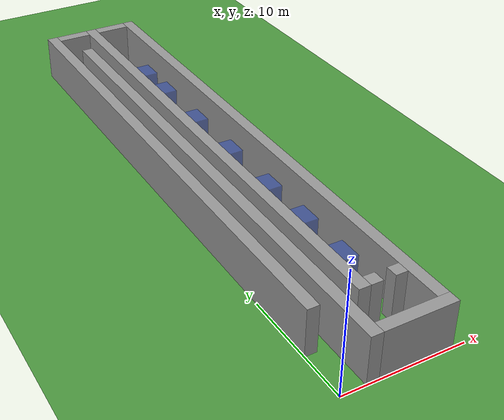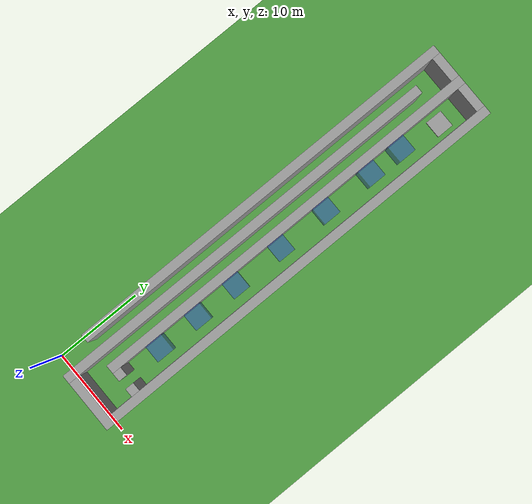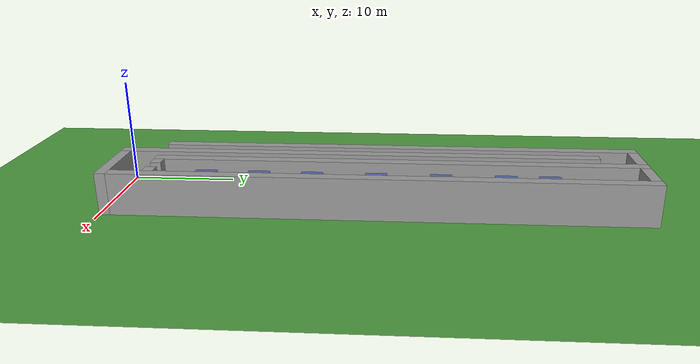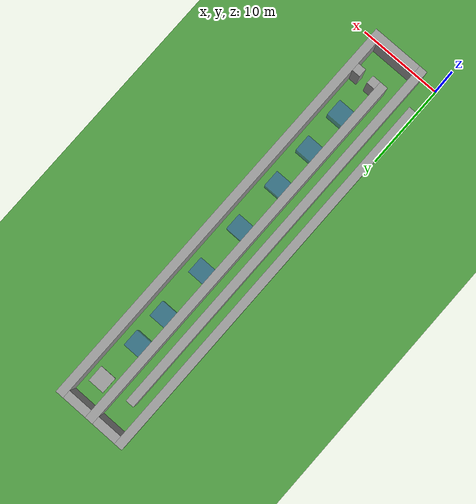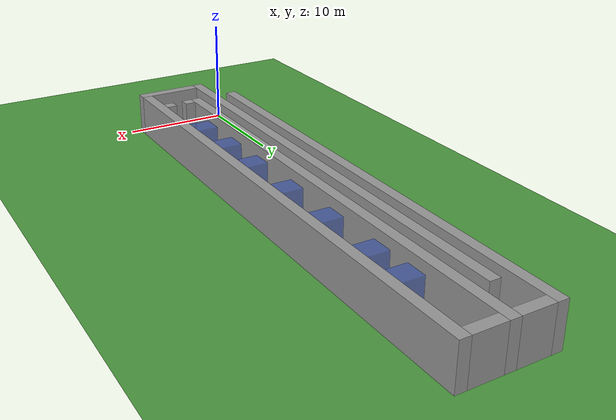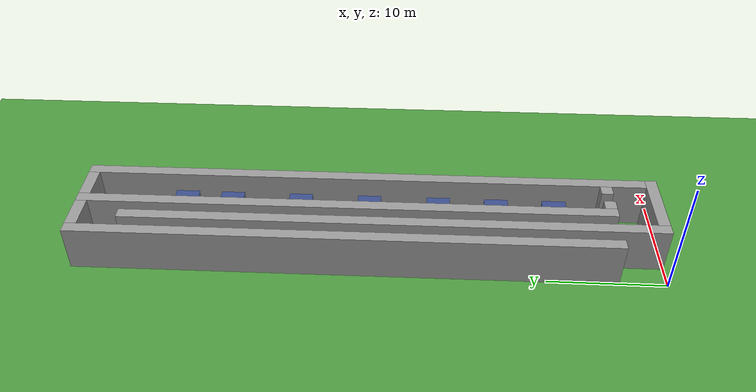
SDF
<sdf version="1.6">
 <world name="default">
  <light name="sun" type="directional">
   <pose>0 0 10 0 -0 0</pose>
   <diffuse>0.8 0.8 0.8 1</diffuse>
   <specular>0.1 0.1 0.1 1</specular>
   <attenuation>
    <range>1000</range>
    <constant>0.9</constant>
    <linear>0.01</linear>
    <quadratic>0.001</quadratic>
   </attenuation>
   <direction>-0.5 0.5 -1</direction>
  </light>
  <model name="ground_plane">
   <static>1</static>
   <link name="link">
    <collision name="collision">
     <geometry><plane><normal>0 0 1</normal><size>100 100</size></plane></geometry>
     <surface><friction><ode><mu>100</mu><mu2>50</mu2></ode></friction></surface>
    </collision>
    <visual name="visual">
     <cast_shadows>0</cast_shadows>
     <geometry><plane><normal>0 0 1</normal><size>100 100</size></plane></geometry>
     <material>
      <script><uri>file://media/materials/scripts/gazebo.material</uri><name>Gazebo/Grass</name></script>
     </material>
    </visual>
   </link>
  </model>
  <gravity>0 0 -9.8</gravity>
  <magnetic_field>6e-06 2.3e-05 -4.2e-05</magnetic_field>
  <atmosphere type="adiabatic"/>
  <physics name="default_physics" default="0" type="ode">
   <max_step_size>0.004</max_step_size>
   <real_time_factor>1</real_time_factor>
   <real_time_update_rate>250</real_time_update_rate>
  </physics>
  <scene>
   <ambient>0.4 0.4 0.4 1</ambient>
   <background>0.7 0.7 0.7 1</background>
   <shadows>1</shadows>
   <sky>
    <clouds>
     <speed>0.6</speed>
     <direction>0</direction>
     <humidity>0.5</humidity>
     <mean_size>0.5</mean_size>
     <ambient>0.8 0.8 0.8 1</ambient>
    </clouds>
   </sky>
  </scene>
  <spherical_coordinates>
   <surface_model>EARTH_WGS84</surface_model>
   <latitude_deg>0</latitude_deg>
   <longitude_deg>0</longitude_deg>
   <elevation>0</elevation>
   <heading_deg>0</heading_deg>
  </spherical_coordinates>
  <model name="wall">
   <pose>2.500000 23.000000 2 0 0 0</pose>
   <static>1</static>
   <link name="wall-link">
    <collision name="collision"><geometry><box><size>1 46 4</size></box></geometry></collision>
    <visual name="visual">
     <geometry><box><size>1 46 4</size></box></geometry>
     <material>
      <script><name>Gazebo/Grey</name><uri>file://media/materials/scripts/gazebo.material</uri></script>
     </material>
    </visual>
    <gravity>0</gravity>
   </link>
  </model>
  <model name="wall">
   <pose>6.000000 0.500000 2 0 0 0</pose>
   <static>1</static>
   <link name="wall-link">
    <collision name="collision"><geometry><box><size>6 1 4</size></box></geometry></collision>
    <visual name="visual">
     <geometry><box><size>6 1 4</size></box></geometry>
     <material>
      <script><name>Gazebo/Grey</name><uri>file://media/materials/scripts/gazebo.material</uri></script>
     </material>
    </visual>
    <gravity>0</gravity>
   </link>
  </model>
  <model name="wall">
   <pose>8.500000 25.500000 2 0 0 0</pose>
   <static>1</static>
   <link name="wall-link">
    <collision name="collision"><geometry><box><size>1 49 4</size></box></geometry></collision>
    <visual name="visual">
     <geometry><box><size>1 49 4</size></box></geometry>
     <material>
      <script><name>Gazebo/Grey</name><uri>file://media/materials/scripts/gazebo.material</uri></script>
     </material>
    </visual>
    <gravity>0</gravity>
   </link>
  </model>
  <model name="wall">
   <pose>0.500000 27.000000 2 0 0 0</pose>
   <static>1</static>
   <link name="wall-link">
    <collision name="collision"><geometry><box><size>1 46 4</size></box></geometry></collision>
    <visual name="visual">
     <geometry><box><size>1 46 4</size></box></geometry>
     <material>
      <script><name>Gazebo/Grey</name><uri>file://media/materials/scripts/gazebo.material</uri></script>
     </material>
    </visual>
    <gravity>0</gravity>
   </link>
  </model>
  <model name="wall">
   <pose>4.500000 27.000000 2 0 0 0</pose>
   <static>1</static>
   <link name="wall-link">
    <collision name="collision"><geometry><box><size>1 46 4</size></box></geometry></collision>
    <visual name="visual">
     <geometry><box><size>1 46 4</size></box></geometry>
     <material>
      <script><name>Gazebo/Grey</name><uri>file://media/materials/scripts/gazebo.material</uri></script>
     </material>
    </visual>
    <gravity>0</gravity>
   </link>
  </model>
  <model name="wall">
   <pose>5.500000 4.500000 2 0 0 0</pose>
   <static>1</static>
   <link name="wall-link">
    <collision name="collision"><geometry><box><size>1 1 4</size></box></geometry></collision>
    <visual name="visual">
     <geometry><box><size>1 1 4</size></box></geometry>
     <material>
      <script><name>Gazebo/Grey</name><uri>file://media/materials/scripts/gazebo.material</uri></script>
     </material>
    </visual>
    <gravity>0</gravity>
   </link>
  </model>
  <model name="wall">
   <pose>7.500000 4.500000 2 0 0 0</pose>
   <static>1</static>
   <link name="wall-link">
    <collision name="collision"><geometry><box><size>1 1 4</size></box></geometry></collision>
    <visual name="visual">
     <geometry><box><size>1 1 4</size></box></geometry>
     <material>
      <script><name>Gazebo/Grey</name><uri>file://media/materials/scripts/gazebo.material</uri></script>
     </material>
    </visual>
    <gravity>0</gravity>
   </link>
  </model>
  <model name="wall">
   <pose>2.500000 49.500000 2 0 0 0</pose>
   <static>1</static>
   <link name="wall-link">
    <collision name="collision"><geometry><box><size>3 1 4</size></box></geometry></collision>
    <visual name="visual">
     <geometry><box><size>3 1 4</size></box></geometry>
     <material>
      <script><name>Gazebo/Grey</name><uri>file://media/materials/scripts/gazebo.material</uri></script>
     </material>
    </visual>
    <gravity>0</gravity>
   </link>
  </model>
  <model name="wall">
   <pose>6.500000 49.500000 2 0 0 0</pose>
   <static>1</static>
   <link name="wall-link">
    <collision name="collision"><geometry><box><size>3 1 4</size></box></geometry></collision>
    <visual name="visual">
     <geometry><box><size>3 1 4</size></box></geometry>
     <material>
      <script><name>Gazebo/Grey</name><uri>file://media/materials/scripts/gazebo.material</uri></script>
     </material>
    </visual>
    <gravity>0</gravity>
   </link>
  </model>
  <include><uri>model://boostbox</uri><pose>6 9 2 0 -0 0</pose></include>
  <include><uri>model://boostbox</uri><pose>6 14 2 0 -0 0</pose></include>
  <include><uri>model://boostbox</uri><pose>6 19 2 0 -0 0</pose></include>
  <include><uri>model://boostbox</uri><pose>6 25 2 0 -0 0</pose></include>
  <include><uri>model://boostbox</uri><pose>6 31 2 0 -0 0</pose></include>
  <include><uri>model://boostbox</uri><pose>6 37 2 0 -0 0</pose></include>
  <include><uri>model://boostbox</uri><pose>6 41 2 0 -0 0</pose></include>
  <model name="goal">
   <pose>6.5 46.5 0.05 0 -0 0</pose>
   <static>1</static>
   <link name="link">
    <collision name="collision"><geometry><box><size>2.0 2.0 0.1</size></box></geometry></collision>
    <visual name="visual">
     <geometry><box><size>2.0 2.0 0.1</size></box></geometry>
     <material>
      <script><name>Gazebo/Grey</name><uri>file://media/materials/scripts/gazebo.material</uri></script>
     </material>
    </visual>
   </link>
  </model>
 </world>
</sdf>

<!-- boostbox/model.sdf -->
<sdf version="1.6">
  <model name="boostbox">
    <link name="base">
      <gravity>false</gravity>
      <visual name="visual">
        <geometry>
          <box>
            <size>2 2 2</size>
          </box>
        </geometry>
        <material>
          <script>
            <name>Gazebo/BlueTransparent</name>
            <uri>file://media/materials/scripts/gazebo.material</uri>
          </script>
        </material>
      </visual>
    </link>
  </model>
</sdf>
